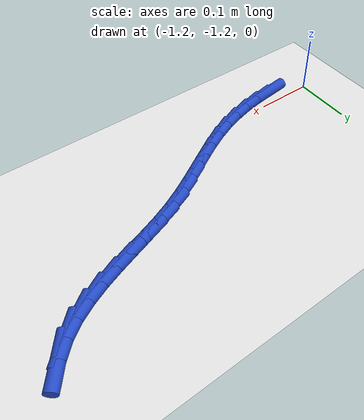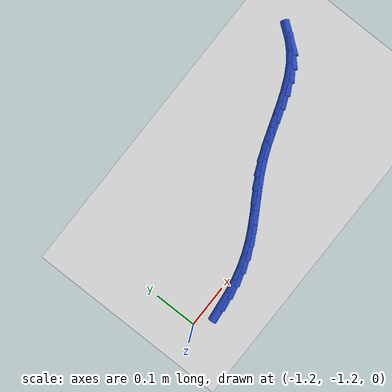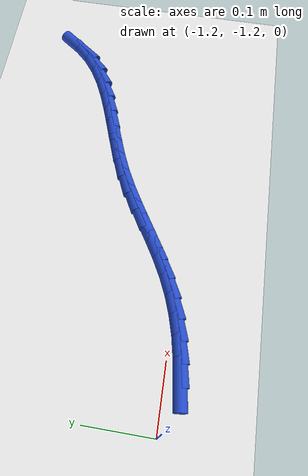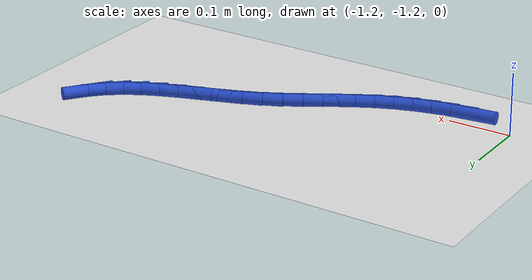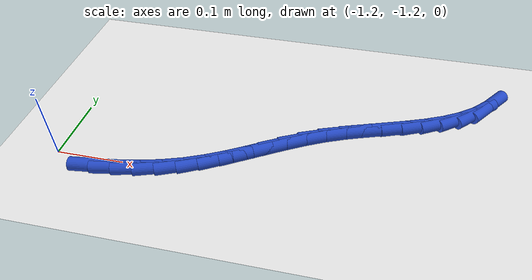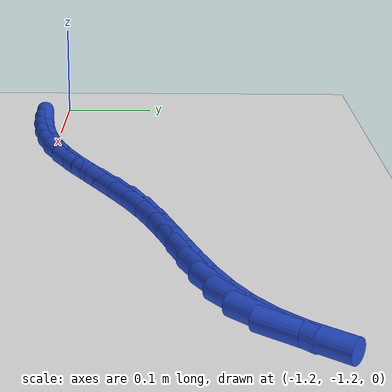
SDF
<sdf version="1.6">
 <world name="default">
  <model name="ground_plane">
   <static>1</static>
   <link name="link">
    <collision name="collision">
     <geometry><plane><normal>0 0 1</normal><size>100 100</size></plane></geometry>
     <surface><friction><ode><mu>100</mu><mu2>50</mu2></ode></friction></surface>
    </collision>
    <visual name="visual">
     <cast_shadows>0</cast_shadows>
     <geometry><plane><normal>0 0 1</normal><size>100 100</size></plane></geometry>
     <material>
      <script><uri>file://media/materials/scripts/gazebo.material</uri><name>Gazebo/WhiteGlow</name></script>
     </material>
    </visual>
   </link>
  </model>
  <model name="line">
   <link name="link_190">
    <pose>-1.125207877568804 -1.2206800491291212 0.01 0 1.57 0.12181423303658434</pose>
    <collision name="collision">
     <geometry><cylinder><radius>0.01</radius><length>0.08</length></cylinder></geometry>
    </collision>
    <visual name="visual">
     <material>
      <script><name>Gazebo/Blue</name><uri>file://media/materials/scripts/gazebo.material</uri></script>
     </material>
     <geometry><cylinder><radius>0.01</radius><length>0.08</length></cylinder></geometry>
    </visual>
   </link>
   <link name="link_191">
    <pose>-1.0950237884245668 -1.2169849022864183 0.01 0 1.57 0.18634807345460225</pose>
    <collision name="collision">
     <geometry><cylinder><radius>0.01</radius><length>0.08</length></cylinder></geometry>
    </collision>
    <visual name="visual">
     <material>
      <script><name>Gazebo/Blue</name><uri>file://media/materials/scripts/gazebo.material</uri></script>
     </material>
     <geometry><cylinder><radius>0.01</radius><length>0.08</length></cylinder></geometry>
    </visual>
   </link>
   <link name="link_192">
    <pose>-1.0653967184380406 -1.2113991484678608 0.01 0 1.57 0.2553118234178769</pose>
    <collision name="collision">
     <geometry><cylinder><radius>0.01</radius><length>0.08</length></cylinder></geometry>
    </collision>
    <visual name="visual">
     <material>
      <script><name>Gazebo/Blue</name><uri>file://media/materials/scripts/gazebo.material</uri></script>
     </material>
     <geometry><cylinder><radius>0.01</radius><length>0.08</length></cylinder></geometry>
    </visual>
   </link>
   <link name="link_193">
    <pose>-1.0364673748687157 -1.2038483638302004 0.01 0 1.57 0.3289929858775089</pose>
    <collision name="collision">
     <geometry><cylinder><radius>0.01</radius><length>0.08</length></cylinder></geometry>
    </collision>
    <visual name="visual">
     <material>
      <script><name>Gazebo/Blue</name><uri>file://media/materials/scripts/gazebo.material</uri></script>
     </material>
     <geometry><cylinder><radius>0.01</radius><length>0.08</length></cylinder></geometry>
    </visual>
   </link>
   <link name="link_194">
    <pose>-1.008376464976082 -1.1942581245301884 0.01 0 1.57 0.4068940563089665</pose>
    <collision name="collision">
     <geometry><cylinder><radius>0.01</radius><length>0.08</length></cylinder></geometry>
    </collision>
    <visual name="visual">
     <material>
      <script><name>Gazebo/Blue</name><uri>file://media/materials/scripts/gazebo.material</uri></script>
     </material>
     <geometry><cylinder><radius>0.01</radius><length>0.08</length></cylinder></geometry>
    </visual>
   </link>
   <link name="link_195">
    <pose>-0.9812533669544238 -1.1825696017064296 0.01 0 1.57 0.4751492028795528</pose>
    <collision name="collision">
     <geometry><cylinder><radius>0.01</radius><length>0.08</length></cylinder></geometry>
    </collision>
    <visual name="visual">
     <material>
      <script><name>Gazebo/Blue</name><uri>file://media/materials/scripts/gazebo.material</uri></script>
     </material>
     <geometry><cylinder><radius>0.01</radius><length>0.08</length></cylinder></geometry>
    </visual>
   </link>
   <link name="link_196">
    <pose>-0.9549861452371629 -1.169056146042195 0.01 0 1.57 0.5200288158495574</pose>
    <collision name="collision">
     <geometry><cylinder><radius>0.01</radius><length>0.08</length></cylinder></geometry>
    </collision>
    <visual name="visual">
     <material>
      <script><name>Gazebo/Blue</name><uri>file://media/materials/scripts/gazebo.material</uri></script>
     </material>
     <geometry><cylinder><radius>0.01</radius><length>0.08</length></cylinder></geometry>
    </visual>
   </link>
   <link name="link_197">
    <pose>-0.929231786299311 -1.1543091977102768 0.01 0 1.57 0.540992491532419</pose>
    <collision name="collision">
     <geometry><cylinder><radius>0.01</radius><length>0.08</length></cylinder></geometry>
    </collision>
    <visual name="visual">
     <material>
      <script><name>Gazebo/Blue</name><uri>file://media/materials/scripts/gazebo.material</uri></script>
     </material>
     <geometry><cylinder><radius>0.01</radius><length>0.08</length></cylinder></geometry>
    </visual>
   </link>
   <link name="link_198">
    <pose>-0.9036379959168279 -1.1389329721946408 0.01 0 1.57 0.5384203640429419</pose>
    <collision name="collision">
     <geometry><cylinder><radius>0.01</radius><length>0.08</length></cylinder></geometry>
    </collision>
    <visual name="visual">
     <material>
      <script><name>Gazebo/Blue</name><uri>file://media/materials/scripts/gazebo.material</uri></script>
     </material>
     <geometry><cylinder><radius>0.01</radius><length>0.08</length></cylinder></geometry>
    </visual>
   </link>
   <link name="link_199">
    <pose>-0.8778524798656734 -1.1235316849792518 0.01 0 1.57 0.5127289609035799</pose>
    <collision name="collision">
     <geometry><cylinder><radius>0.01</radius><length>0.08</length></cylinder></geometry>
    </collision>
    <visual name="visual">
     <material>
      <script><name>Gazebo/Blue</name><uri>file://media/materials/scripts/gazebo.material</uri></script>
     </material>
     <geometry><cylinder><radius>0.01</radius><length>0.08</length></cylinder></geometry>
    </visual>
   </link>
   <link name="link_200">
    <pose>-0.8515229439218073 -1.1087095515480763 0.01 0 1.57 0.4644065736516878</pose>
    <collision name="collision">
     <geometry><cylinder><radius>0.01</radius><length>0.08</length></cylinder></geometry>
    </collision>
    <visual name="visual">
     <material>
      <script><name>Gazebo/Blue</name><uri>file://media/materials/scripts/gazebo.material</uri></script>
     </material>
     <geometry><cylinder><radius>0.01</radius><length>0.08</length></cylinder></geometry>
    </visual>
   </link>
   <link name="link_201">
    <pose>-0.8242970938611887 -1.0950707873850787 0.01 0 1.57 0.3999305573327297</pose>
    <collision name="collision">
     <geometry><cylinder><radius>0.01</radius><length>0.08</length></cylinder></geometry>
    </collision>
    <visual name="visual">
     <material>
      <script><name>Gazebo/Blue</name><uri>file://media/materials/scripts/gazebo.material</uri></script>
     </material>
     <geometry><cylinder><radius>0.01</radius><length>0.08</length></cylinder></geometry>
    </visual>
   </link>
   <link name="link_202">
    <pose>-0.795924394790834 -1.0830773250234604 0.01 0 1.57 0.3518004346812721</pose>
    <collision name="collision">
     <geometry><cylinder><radius>0.01</radius><length>0.08</length></cylinder></geometry>
    </collision>
    <visual name="visual">
     <material>
      <script><name>Gazebo/Blue</name><uri>file://media/materials/scripts/gazebo.material</uri></script>
     </material>
     <geometry><cylinder><radius>0.01</radius><length>0.08</length></cylinder></geometry>
    </visual>
   </link>
   <link name="link_203">
    <pose>-0.7667442859845026 -1.072366177409712 0.01 0 1.57 0.3301773888251357</pose>
    <collision name="collision">
     <geometry><cylinder><radius>0.01</radius><length>0.08</length></cylinder></geometry>
    </collision>
    <visual name="visual">
     <material>
      <script><name>Gazebo/Blue</name><uri>file://media/materials/scripts/gazebo.material</uri></script>
     </material>
     <geometry><cylinder><radius>0.01</radius><length>0.08</length></cylinder></geometry>
    </visual>
   </link>
   <link name="link_204">
    <pose>-0.7373083095762872 -1.0622777889052064 0.01 0 1.57 0.33442802027989743</pose>
    <collision name="collision">
     <geometry><cylinder><radius>0.01</radius><length>0.08</length></cylinder></geometry>
    </collision>
    <visual name="visual">
     <material>
      <script><name>Gazebo/Blue</name><uri>file://media/materials/scripts/gazebo.material</uri></script>
     </material>
     <geometry><cylinder><radius>0.01</radius><length>0.08</length></cylinder></geometry>
    </visual>
   </link>
   <link name="link_205">
    <pose>-0.7081682857953359 -1.052152215030464 0.01 0 1.57 0.36535804297729635</pose>
    <collision name="collision">
     <geometry><cylinder><radius>0.01</radius><length>0.08</length></cylinder></geometry>
    </collision>
    <visual name="visual">
     <material>
      <script><name>Gazebo/Blue</name><uri>file://media/materials/scripts/gazebo.material</uri></script>
     </material>
     <geometry><cylinder><radius>0.01</radius><length>0.08</length></cylinder></geometry>
    </visual>
   </link>
   <link name="link_206">
    <pose>-0.6798760348707971 -1.0413295113060055 0.01 0 1.57 0.42526582892085324</pose>
    <collision name="collision">
     <geometry><cylinder><radius>0.01</radius><length>0.08</length></cylinder></geometry>
    </collision>
    <visual name="visual">
     <material>
      <script><name>Gazebo/Blue</name><uri>file://media/materials/scripts/gazebo.material</uri></script>
     </material>
     <geometry><cylinder><radius>0.01</radius><length>0.08</length></cylinder></geometry>
    </visual>
   </link>
   <link name="link_207">
    <pose>-0.6529833770318194 -1.0291497332523514 0.01 0 1.57 0.5174717838593466</pose>
    <collision name="collision">
     <geometry><cylinder><radius>0.01</radius><length>0.08</length></cylinder></geometry>
    </collision>
    <visual name="visual">
     <material>
      <script><name>Gazebo/Blue</name><uri>file://media/materials/scripts/gazebo.material</uri></script>
     </material>
     <geometry><cylinder><radius>0.01</radius><length>0.08</length></cylinder></geometry>
    </visual>
   </link>
   <link name="link_208">
    <pose>-0.6280421325075513 -1.0149529363900218 0.01 0 1.57 0.6447879438738405</pose>
    <collision name="collision">
     <geometry><cylinder><radius>0.01</radius><length>0.08</length></cylinder></geometry>
    </collision>
    <visual name="visual">
     <material>
      <script><name>Gazebo/Blue</name><uri>file://media/materials/scripts/gazebo.material</uri></script>
     </material>
     <geometry><cylinder><radius>0.01</radius><length>0.08</length></cylinder></geometry>
    </visual>
   </link>
   <link name="link_209">
    <pose>-0.6056040719328176 -0.9980792315941045 0.01 0 1.57 0.7951066063094683</pose>
    <collision name="collision">
     <geometry><cylinder><radius>0.01</radius><length>0.08</length></cylinder></geometry>
    </collision>
    <visual name="visual">
     <material>
      <script><name>Gazebo/Blue</name><uri>file://media/materials/scripts/gazebo.material</uri></script>
     </material>
     <geometry><cylinder><radius>0.01</radius><length>0.08</length></cylinder></geometry>
    </visual>
   </link>
   <link name="link_210">
    <pose>-0.5860115156345509 -0.9781025071225603 0.01 0 1.57 0.9261875406451276</pose>
    <collision name="collision">
     <geometry><cylinder><radius>0.01</radius><length>0.08</length></cylinder></geometry>
    </collision>
    <visual name="visual">
     <material>
      <script><name>Gazebo/Blue</name><uri>file://media/materials/scripts/gazebo.material</uri></script>
     </material>
     <geometry><cylinder><radius>0.01</radius><length>0.08</length></cylinder></geometry>
    </visual>
   </link>
  </model>
 </world>
</sdf>
